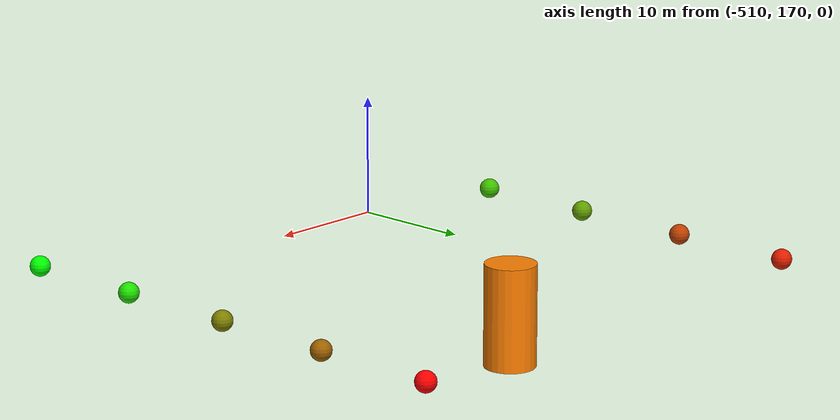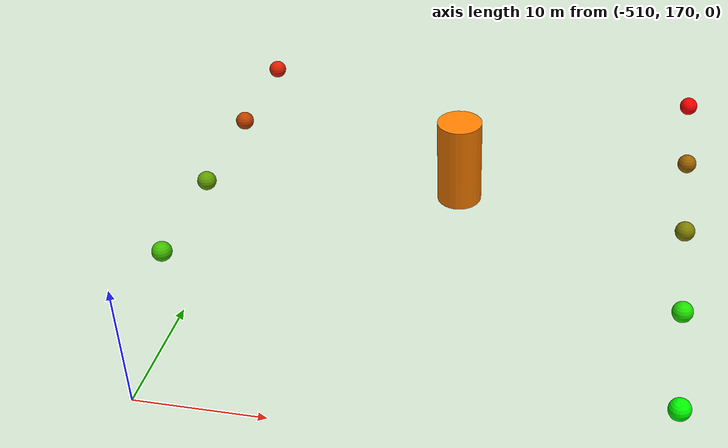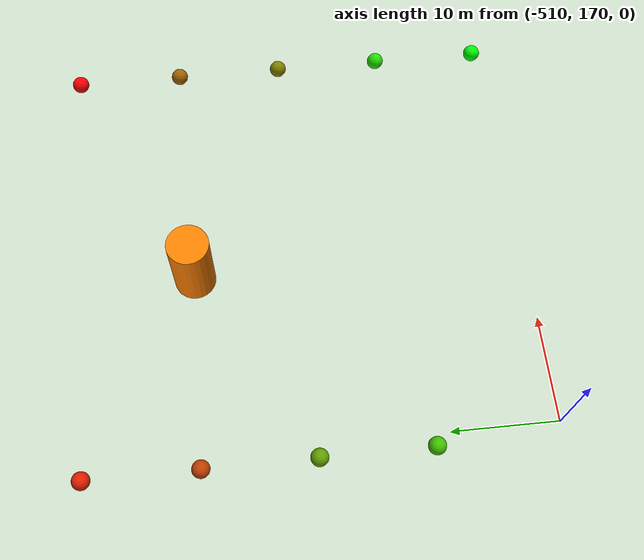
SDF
<sdf version="1.9">
 <world name="bathymetry">
  <physics name="4ms" type="dart">
   <max_step_size>0.004</max_step_size>
   <real_time_factor>1.0</real_time_factor>
  </physics>
  <plugin filename="gz-sim-physics-system" name="gz::sim::systems::Physics"/>
  <plugin filename="gz-sim-user-commands-system" name="gz::sim::systems::UserCommands"/>
  <plugin filename="gz-sim-sensors-system" name="gz::sim::systems::Sensors">
   <render_engine>ogre2</render_engine>
   <disable_on_drained_battery>true</disable_on_drained_battery>
  </plugin>
  <plugin filename="gz-sim-imu-system" name="gz::sim::systems::Imu"/>
  <plugin filename="gz-sim-magnetometer-system" name="gz::sim::systems::Magnetometer"/>
  <plugin filename="gz-sim-forcetorque-system" name="gz::sim::systems::ForceTorque"/>
  <plugin filename="gz-sim-particle-emitter-system" name="gz::sim::systems::ParticleEmitter"/>
  <plugin filename="gz-sim-scene-broadcaster-system" name="gz::sim::systems::SceneBroadcaster"/>
  <plugin filename="gz-sim-contact-system" name="gz::sim::systems::Contact"/>
  <plugin filename="gz-sim-navsat-system" name="gz::sim::systems::NavSat"/>
  <scene><grid>false</grid><ambient>1.0 1.0 1.0</ambient><background>0.8 0.8 0.8</background></scene>
  <spherical_coordinates>
   <surface_model>EARTH_WGS84</surface_model>
   <world_frame_orientation>ENU</world_frame_orientation>
   <latitude_deg>-33.724223</latitude_deg>
   <longitude_deg>150.679736</longitude_deg>
   <elevation>0.0</elevation>
   <heading_deg>0.0</heading_deg>
  </spherical_coordinates>
  <light type="directional" name="sun">
   <pose>0 0 10 0 0 0</pose>
   <diffuse>0.8 0.8 0.8 1</diffuse>
   <specular>0.2 0.2 0.2 1</specular>
   <attenuation>
    <range>1000</range>
    <constant>0.9</constant>
    <linear>0.01</linear>
    <quadratic>0.001</quadratic>
   </attenuation>
   <direction>-0.5 0.1 -0.9</direction>
  </light>
  <model name="wp_2">
   <pose>-472 172 4.0 0 0 0</pose>
   <static>true</static>
   <link name="link">
    <visual name="visual">
     <geometry><sphere><radius>0.8</radius></sphere></geometry>
     <material><ambient>0.00 1.00 0.00 1</ambient><diffuse>0.00 1.00 0.00 1</diffuse></material>
    </visual>
   </link>
  </model>
  <model name="wp_3">
   <pose>-472 182 4.0 0 0 0</pose>
   <static>true</static>
   <link name="link">
    <visual name="visual">
     <geometry><sphere><radius>0.8</radius></sphere></geometry>
     <material><ambient>0.12 0.88 0.00 1</ambient><diffuse>0.12 0.88 0.00 1</diffuse></material>
    </visual>
   </link>
  </model>
  <model name="wp_4">
   <pose>-512 182 4.0 0 0 0</pose>
   <static>true</static>
   <link name="link">
    <visual name="visual">
     <geometry><sphere><radius>0.8</radius></sphere></geometry>
     <material><ambient>0.25 0.75 0.00 1</ambient><diffuse>0.25 0.75 0.00 1</diffuse></material>
    </visual>
   </link>
  </model>
  <model name="wp_5">
   <pose>-512 192 4.0 0 0 0</pose>
   <static>true</static>
   <link name="link">
    <visual name="visual">
     <geometry><sphere><radius>0.8</radius></sphere></geometry>
     <material><ambient>0.38 0.62 0.00 1</ambient><diffuse>0.38 0.62 0.00 1</diffuse></material>
    </visual>
   </link>
  </model>
  <model name="wp_6">
   <pose>-472 192 4.0 0 0 0</pose>
   <static>true</static>
   <link name="link">
    <visual name="visual">
     <geometry><sphere><radius>0.8</radius></sphere></geometry>
     <material><ambient>0.50 0.50 0.00 1</ambient><diffuse>0.50 0.50 0.00 1</diffuse></material>
    </visual>
   </link>
  </model>
  <model name="wp_7">
   <pose>-472 202 4.0 0 0 0</pose>
   <static>true</static>
   <link name="link">
    <visual name="visual">
     <geometry><sphere><radius>0.8</radius></sphere></geometry>
     <material><ambient>0.62 0.38 0.00 1</ambient><diffuse>0.62 0.38 0.00 1</diffuse></material>
    </visual>
   </link>
  </model>
  <model name="wp_8">
   <pose>-512 202 4.0 0 0 0</pose>
   <static>true</static>
   <link name="link">
    <visual name="visual">
     <geometry><sphere><radius>0.8</radius></sphere></geometry>
     <material><ambient>0.75 0.25 0.00 1</ambient><diffuse>0.75 0.25 0.00 1</diffuse></material>
    </visual>
   </link>
  </model>
  <model name="wp_9">
   <pose>-512 212 4.0 0 0 0</pose>
   <static>true</static>
   <link name="link">
    <visual name="visual">
     <geometry><sphere><radius>0.8</radius></sphere></geometry>
     <material><ambient>0.88 0.12 0.00 1</ambient><diffuse>0.88 0.12 0.00 1</diffuse></material>
    </visual>
   </link>
  </model>
  <model name="wp_10">
   <pose>-472 212 4.0 0 0 0</pose>
   <static>true</static>
   <link name="link">
    <visual name="visual">
     <geometry><sphere><radius>0.8</radius></sphere></geometry>
     <material><ambient>1.00 0.00 0.00 1</ambient><diffuse>1.00 0.00 0.00 1</diffuse></material>
    </visual>
   </link>
  </model>
  <model name="estaca_desafio">
   <pose>-492 202 0 0 0 0</pose>
   <static>true</static>
   <link name="link">
    <visual name="visual">
     <pose>0 0 2 0 0 0</pose>
     <geometry><cylinder><radius>2.0</radius><length>8.0</length></cylinder></geometry>
     <material><ambient>1 0.5 0 1</ambient><diffuse>1 0.5 0 1</diffuse></material>
    </visual>
    <collision name="collision">
     <pose>0 0 2 0 0 0</pose>
     <geometry><cylinder><radius>2.0</radius><length>8.0</length></cylinder></geometry>
    </collision>
   </link>
  </model>
  <plugin filename="libUSVWind.so" name="vrx::USVWind">
   <wind_obj>
    <name>wamv</name>
    <link_name>wamv/base_link</link_name>
    <coeff_vector>.5 .5 .33</coeff_vector>
   </wind_obj>
   <wind_direction>240</wind_direction>
   <wind_mean_velocity>0.0</wind_mean_velocity>
   <var_wind_gain_constants>0</var_wind_gain_constants>
   <var_wind_time_constants>2</var_wind_time_constants>
   <random_seed>10</random_seed>
   <update_rate>10</update_rate>
   <topic_wind_speed>/vrx/debug/wind/speed</topic_wind_speed>
   <topic_wind_direction>/vrx/debug/wind/direction</topic_wind_direction>
  </plugin>
  <plugin filename="libPublisherPlugin.so" name="vrx::PublisherPlugin">
   <message type="gz.msgs.Param" topic="/vrx/wavefield/parameters" every="2.0">params {
          key: "direction"
          value {
            type: DOUBLE
            double_value: 0.0
          }
        }
        params {
          key: "gain"
          value {
            type: DOUBLE
            double_value: 0.3
          }
        }
        params {
          key: "period"
          value {
            type: DOUBLE
            double_value: 5
          }
        }
        params {
          key: "steepness"
          value {
            type: DOUBLE
            double_value: 0
          }
        }</message>
  </plugin>
 </world>
</sdf>
